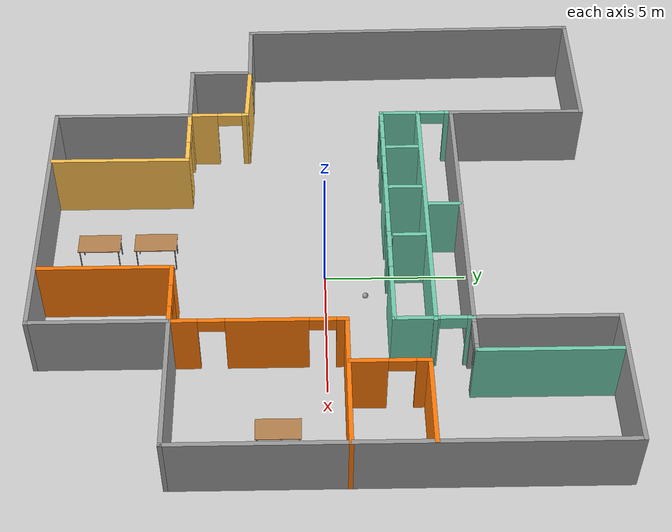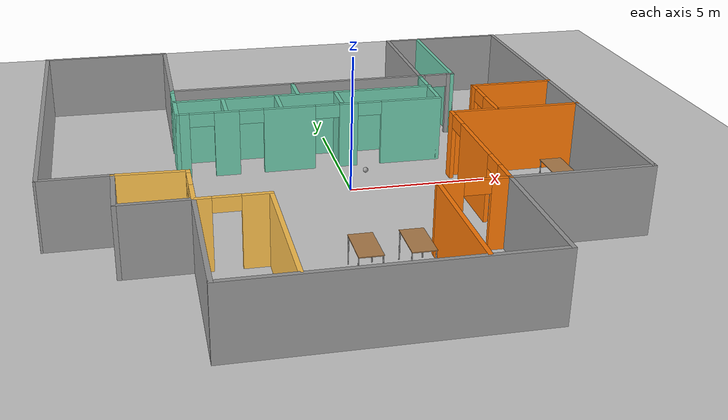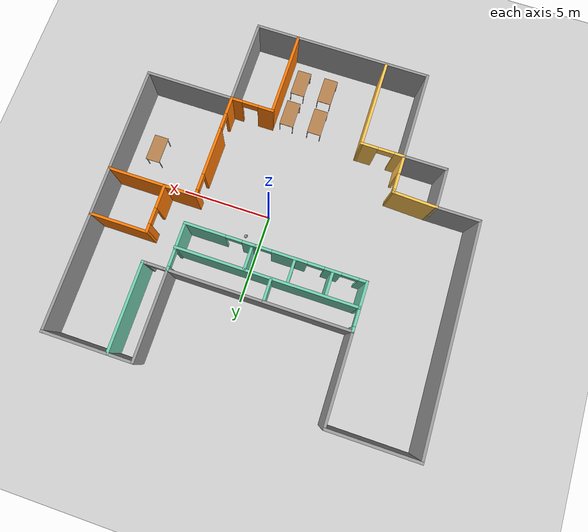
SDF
<sdf version="1.6">
 <world name="default">
  <model name="ground_plane">
   <static>1</static>
   <link name="link">
    <collision name="collision">
     <geometry><plane><normal>0 0 1</normal><size>100 100</size></plane></geometry>
     <surface>
      <contact><collide_bitmask>65535</collide_bitmask></contact>
      <friction><ode><mu>100</mu><mu2>50</mu2></ode></friction>
     </surface>
    </collision>
    <visual name="visual">
     <cast_shadows>0</cast_shadows>
     <geometry><plane><normal>0 0 1</normal><size>100 100</size></plane></geometry>
     <material>
      <script><uri>file://media/materials/scripts/gazebo.material</uri><name>Gazebo/Grey</name></script>
     </material>
    </visual>
   </link>
  </model>
  <model name="building">
   <pose>-1.05602 -0.10222 0 0 -0 0</pose>
   <link name="Wall_0">
    <collision name="Wall_0_Collision">
     <geometry><box><size>5 0.15 2.5</size></box></geometry>
     <pose>0 0 1.25 0 -0 0</pose>
    </collision>
    <visual name="Wall_0_Visual">
     <pose>0 0 1.25 0 -0 0</pose>
     <geometry><box><size>5 0.15 2.5</size></box></geometry>
     <material>
      <script><uri>file://media/materials/scripts/gazebo.material</uri><name>Gazebo/Grey</name></script>
      <ambient>1 1 1 1</ambient>
     </material>
     <meta><layer>0</layer></meta>
    </visual>
    <pose>-7.34955 9.75605 0 0 -0 0</pose>
   </link>
   <link name="Wall_1">
    <collision name="Wall_1_Collision">
     <geometry><box><size>5 0.15 2.5</size></box></geometry>
     <pose>0 0 1.25 0 -0 0</pose>
    </collision>
    <visual name="Wall_1_Visual">
     <pose>0 0 1.25 0 -0 0</pose>
     <geometry><box><size>5 0.15 2.5</size></box></geometry>
     <material>
      <script><uri>file://media/materials/scripts/gazebo.material</uri><name>Gazebo/Grey</name></script>
      <ambient>1 1 1 1</ambient>
     </material>
     <meta><layer>0</layer></meta>
    </visual>
    <pose>-4.92455 7.33105 0 0 0 -1.5708</pose>
   </link>
   <link name="Wall_10">
    <collision name="Wall_10_Collision">
     <geometry><box><size>2.5 0.15 2.5</size></box></geometry>
     <pose>0 0 1.25 0 -0 0</pose>
    </collision>
    <visual name="Wall_10_Visual">
     <pose>0 0 1.25 0 -0 0</pose>
     <geometry><box><size>2.5 0.15 2.5</size></box></geometry>
     <material>
      <script><uri>file://media/materials/scripts/gazebo.material</uri><name>Gazebo/Grey</name></script>
      <ambient>1 1 1 1</ambient>
     </material>
     <meta><layer>0</layer></meta>
    </visual>
    <pose>-6.09955 -4.81295 0 0 -0 3.14159</pose>
   </link>
   <link name="Wall_11">
    <collision name="Wall_11_Collision">
     <geometry><box><size>2.344 0.15 2.5</size></box></geometry>
     <pose>0 0 1.25 0 -0 0</pose>
    </collision>
    <visual name="Wall_11_Visual">
     <pose>0 0 1.25 0 -0 0</pose>
     <geometry><box><size>2.344 0.15 2.5</size></box></geometry>
     <material>
      <script><uri>file://media/materials/scripts/gazebo.material</uri><name>Gazebo/Grey</name></script>
      <ambient>1 1 1 1</ambient>
     </material>
     <meta><layer>0</layer></meta>
    </visual>
    <pose>-7.27455 -3.71595 0 0 -0 1.5708</pose>
   </link>
   <link name="Wall_12">
    <collision name="Wall_12_Collision">
     <geometry><box><size>2.5 0.15 2.5</size></box></geometry>
     <pose>0 0 1.25 0 -0 0</pose>
    </collision>
    <visual name="Wall_12_Visual">
     <pose>0 0 1.25 0 -0 0</pose>
     <geometry><box><size>2.5 0.15 2.5</size></box></geometry>
     <material>
      <script><uri>file://media/materials/scripts/gazebo.material</uri><name>Gazebo/Grey</name></script>
      <ambient>1 1 1 1</ambient>
     </material>
     <meta><layer>0</layer></meta>
    </visual>
    <pose>-8.44955 -2.61895 0 0 -0 3.14159</pose>
   </link>
   <link name="Wall_13">
    <collision name="Wall_13_Collision">
     <geometry><box><size>12.5259 0.15 2.5</size></box></geometry>
     <pose>0 0 1.25 0 -0 0</pose>
    </collision>
    <visual name="Wall_13_Visual">
     <pose>0 0 1.25 0 -0 0</pose>
     <geometry><box><size>12.5259 0.15 2.5</size></box></geometry>
     <material>
      <script><uri>file://media/materials/scripts/gazebo.material</uri><name>Gazebo/Grey</name></script>
      <ambient>1 1 1 1</ambient>
     </material>
     <meta><layer>0</layer></meta>
    </visual>
    <pose>-9.69955 3.56855 0 0 -0 1.58292</pose>
   </link>
   <link name="Wall_15">
    <pose>-3.74955 -4.81295 0 0 -0 0</pose>
    <visual name="Wall_15_Visual_0">
     <pose>-0.942883 0 1.25 0 -0 0</pose>
     <geometry><box><size>0.614234 0.15 2.5</size></box></geometry>
     <material>
      <script><uri>file://media/materials/scripts/gazebo.material</uri><name>Gazebo/Grey</name></script>
      <ambient>1 0.764706 0.305882 1</ambient>
     </material>
     <meta><layer>0</layer></meta>
    </visual>
    <collision name="Wall_15_Collision_0">
     <geometry><box><size>0.614234 0.15 2.5</size></box></geometry>
     <pose>-0.942883 0 1.25 0 -0 0</pose>
    </collision>
    <visual name="Wall_15_Visual_1">
     <pose>0.757117 0 1.25 0 -0 0</pose>
     <geometry><box><size>0.985766 0.15 2.5</size></box></geometry>
     <material>
      <script><uri>file://media/materials/scripts/gazebo.material</uri><name>Gazebo/Grey</name></script>
      <ambient>1 0.764706 0.305882 1</ambient>
     </material>
     <meta><layer>0</layer></meta>
    </visual>
    <collision name="Wall_15_Collision_1">
     <geometry><box><size>0.985766 0.15 2.5</size></box></geometry>
     <pose>0.757117 0 1.25 0 -0 0</pose>
    </collision>
    <visual name="Wall_15_Visual_2">
     <pose>-0.185766 0 2.25 0 -0 0</pose>
     <geometry><box><size>0.9 0.15 0.5</size></box></geometry>
     <material>
      <script><uri>file://media/materials/scripts/gazebo.material</uri><name>Gazebo/Grey</name></script>
      <ambient>1 0.764706 0.305882 1</ambient>
     </material>
     <meta><layer>0</layer></meta>
    </visual>
    <collision name="Wall_15_Collision_2">
     <geometry><box><size>0.9 0.15 0.5</size></box></geometry>
     <pose>-0.185766 0 2.25 0 -0 0</pose>
    </collision>
   </link>
   <link name="Wall_16">
    <collision name="Wall_16_Collision">
     <geometry><box><size>5 0.15 2.5</size></box></geometry>
     <pose>0 0 1.25 0 -0 0</pose>
    </collision>
    <visual name="Wall_16_Visual">
     <pose>0 0 1.25 0 -0 0</pose>
     <geometry><box><size>5 0.15 2.5</size></box></geometry>
     <material>
      <script><uri>file://media/materials/scripts/gazebo.material</uri><name>Gazebo/Grey</name></script>
      <ambient>1 0.764706 0.305882 1</ambient>
     </material>
     <meta><layer>0</layer></meta>
    </visual>
    <pose>-2.57455 -7.23795 0 0 0 -1.5708</pose>
   </link>
   <link name="Wall_18">
    <pose>3.75045 -5.09395 0 0 -0 3.14159</pose>
    <visual name="Wall_18_Visual_0">
     <pose>-0.900353 0 1.25 0 -0 0</pose>
     <geometry><box><size>0.699294 0.15 2.5</size></box></geometry>
     <material>
      <script><uri>file://media/materials/scripts/gazebo.material</uri><name>Gazebo/Grey</name></script>
      <ambient>0.996078 0.47451 0.0196078 1</ambient>
     </material>
     <meta><layer>0</layer></meta>
    </visual>
    <collision name="Wall_18_Collision_0">
     <geometry><box><size>0.699294 0.15 2.5</size></box></geometry>
     <pose>-0.900353 0 1.25 0 -0 0</pose>
    </collision>
    <visual name="Wall_18_Visual_1">
     <pose>0.799647 0 1.25 0 -0 0</pose>
     <geometry><box><size>0.900706 0.15 2.5</size></box></geometry>
     <material>
      <script><uri>file://media/materials/scripts/gazebo.material</uri><name>Gazebo/Grey</name></script>
      <ambient>0.996078 0.47451 0.0196078 1</ambient>
     </material>
     <meta><layer>0</layer></meta>
    </visual>
    <collision name="Wall_18_Collision_1">
     <geometry><box><size>0.900706 0.15 2.5</size></box></geometry>
     <pose>0.799647 0 1.25 0 -0 0</pose>
    </collision>
    <visual name="Wall_18_Visual_2">
     <pose>-0.100706 0 2.25 0 -0 0</pose>
     <geometry><box><size>0.9 0.15 0.5</size></box></geometry>
     <material>
      <script><uri>file://media/materials/scripts/gazebo.material</uri><name>Gazebo/Grey</name></script>
      <ambient>0.996078 0.47451 0.0196078 1</ambient>
     </material>
     <meta><layer>0</layer></meta>
    </visual>
    <collision name="Wall_18_Collision_2">
     <geometry><box><size>0.9 0.15 0.5</size></box></geometry>
     <pose>-0.100706 0 2.25 0 -0 0</pose>
    </collision>
   </link>
   <link name="Wall_2">
    <collision name="Wall_2_Collision">
     <geometry><box><size>10 0.15 2.5</size></box></geometry>
     <pose>0 0 1.25 0 -0 0</pose>
    </collision>
    <visual name="Wall_2_Visual">
     <pose>0 0 1.25 0 -0 0</pose>
     <geometry><box><size>10 0.15 2.5</size></box></geometry>
     <material>
      <script><uri>file://media/materials/scripts/gazebo.material</uri><name>Gazebo/Grey</name></script>
      <ambient>1 1 1 1</ambient>
     </material>
     <meta><layer>0</layer></meta>
    </visual>
    <pose>0.000451 4.90605 0 0 -0 0</pose>
   </link>
   <link name="Wall_21">
    <collision name="Wall_21_Collision">
     <geometry><box><size>4.813 0.15 2.5</size></box></geometry>
     <pose>0 0 1.25 0 -0 0</pose>
    </collision>
    <visual name="Wall_21_Visual">
     <pose>0 0 1.25 0 -0 0</pose>
     <geometry><box><size>4.813 0.15 2.5</size></box></geometry>
     <material>
      <script><uri>file://media/materials/scripts/gazebo.material</uri><name>Gazebo/Grey</name></script>
      <ambient>0.996078 0.47451 0.0196078 1</ambient>
     </material>
     <meta><layer>0</layer></meta>
    </visual>
    <pose>2.57545 -7.42545 0 0 0 -1.5708</pose>
   </link>
   <link name="Wall_23">
    <pose>-4.92455 -3.76295 0 0 -0 1.5708</pose>
    <visual name="Wall_23_Visual_0">
     <pose>-0.57792 0 1.25 0 -0 0</pose>
     <geometry><box><size>1.09416 0.15 2.5</size></box></geometry>
     <material>
      <script><uri>file://media/materials/scripts/gazebo.material</uri><name>Gazebo/Grey</name></script>
      <ambient>1 0.764706 0.305882 1</ambient>
     </material>
     <meta><layer>0</layer></meta>
    </visual>
    <collision name="Wall_23_Collision_0">
     <geometry><box><size>1.09416 0.15 2.5</size></box></geometry>
     <pose>-0.57792 0 1.25 0 -0 0</pose>
    </collision>
    <visual name="Wall_23_Visual_1">
     <pose>0.99708 0 1.25 0 -0 0</pose>
     <geometry><box><size>0.255839 0.15 2.5</size></box></geometry>
     <material>
      <script><uri>file://media/materials/scripts/gazebo.material</uri><name>Gazebo/Grey</name></script>
      <ambient>1 0.764706 0.305882 1</ambient>
     </material>
     <meta><layer>0</layer></meta>
    </visual>
    <collision name="Wall_23_Collision_1">
     <geometry><box><size>0.255839 0.15 2.5</size></box></geometry>
     <pose>0.99708 0 1.25 0 -0 0</pose>
    </collision>
    <visual name="Wall_23_Visual_2">
     <pose>0.419161 0 2.25 0 -0 0</pose>
     <geometry><box><size>0.9 0.15 0.5</size></box></geometry>
     <material>
      <script><uri>file://media/materials/scripts/gazebo.material</uri><name>Gazebo/Grey</name></script>
      <ambient>1 0.764706 0.305882 1</ambient>
     </material>
     <meta><layer>0</layer></meta>
    </visual>
    <collision name="Wall_23_Collision_2">
     <geometry><box><size>0.9 0.15 0.5</size></box></geometry>
     <pose>0.419161 0 2.25 0 -0 0</pose>
    </collision>
   </link>
   <link name="Wall_24">
    <collision name="Wall_24_Collision">
     <geometry><box><size>2.50188 0.15 2.5</size></box></geometry>
     <pose>0 0 1.25 0 -0 0</pose>
    </collision>
    <visual name="Wall_24_Visual">
     <pose>0 0 1.25 0 -0 0</pose>
     <geometry><box><size>2.50188 0.15 2.5</size></box></geometry>
     <material>
      <script><uri>file://media/materials/scripts/gazebo.material</uri><name>Gazebo/Grey</name></script>
      <ambient>1 0.764706 0.305882 1</ambient>
     </material>
     <meta><layer>0</layer></meta>
    </visual>
    <pose>-6.09955 -2.66595 0 0 -0 3.10161</pose>
   </link>
   <link name="Wall_26">
    <pose>4.92545 -2.16895 0 0 -0 1.5708</pose>
    <visual name="Wall_26_Visual_0">
     <pose>-2.49069 0 1.25 0 -0 0</pose>
     <geometry><box><size>1.01863 0.15 2.5</size></box></geometry>
     <material>
      <script><uri>file://media/materials/scripts/gazebo.material</uri><name>Gazebo/Grey</name></script>
      <ambient>0.996078 0.47451 0.0196078 1</ambient>
     </material>
     <meta><layer>0</layer></meta>
    </visual>
    <collision name="Wall_26_Collision_0">
     <geometry><box><size>1.01863 0.15 2.5</size></box></geometry>
     <pose>-2.49069 0 1.25 0 -0 0</pose>
    </collision>
    <visual name="Wall_26_Visual_1">
     <pose>0.299469 0 1.25 0 -0 0</pose>
     <geometry><box><size>2.76168 0.15 2.5</size></box></geometry>
     <material>
      <script><uri>file://media/materials/scripts/gazebo.material</uri><name>Gazebo/Grey</name></script>
      <ambient>0.996078 0.47451 0.0196078 1</ambient>
     </material>
     <meta><layer>0</layer></meta>
    </visual>
    <collision name="Wall_26_Collision_1">
     <geometry><box><size>2.76168 0.15 2.5</size></box></geometry>
     <pose>0.299469 0 1.25 0 -0 0</pose>
    </collision>
    <visual name="Wall_26_Visual_2">
     <pose>2.79015 0 1.25 0 -0 0</pose>
     <geometry><box><size>0.419692 0.15 2.5</size></box></geometry>
     <material>
      <script><uri>file://media/materials/scripts/gazebo.material</uri><name>Gazebo/Grey</name></script>
      <ambient>0.996078 0.47451 0.0196078 1</ambient>
     </material>
     <meta><layer>0</layer></meta>
    </visual>
    <collision name="Wall_26_Collision_2">
     <geometry><box><size>0.419692 0.15 2.5</size></box></geometry>
     <pose>2.79015 0 1.25 0 -0 0</pose>
    </collision>
    <visual name="Wall_26_Visual_3">
     <pose>-1.53137 0 2.25 0 -0 0</pose>
     <geometry><box><size>0.9 0.15 0.5</size></box></geometry>
     <material>
      <script><uri>file://media/materials/scripts/gazebo.material</uri><name>Gazebo/Grey</name></script>
      <ambient>0.996078 0.47451 0.0196078 1</ambient>
     </material>
     <meta><layer>0</layer></meta>
    </visual>
    <collision name="Wall_26_Collision_3">
     <geometry><box><size>0.9 0.15 0.5</size></box></geometry>
     <pose>-1.53137 0 2.25 0 -0 0</pose>
    </collision>
    <visual name="Wall_26_Visual_4">
     <pose>2.13031 0 2.25 0 -0 0</pose>
     <geometry><box><size>0.9 0.15 0.5</size></box></geometry>
     <material>
      <script><uri>file://media/materials/scripts/gazebo.material</uri><name>Gazebo/Grey</name></script>
      <ambient>0.996078 0.47451 0.0196078 1</ambient>
     </material>
     <meta><layer>0</layer></meta>
    </visual>
    <collision name="Wall_26_Collision_4">
     <geometry><box><size>0.9 0.15 0.5</size></box></geometry>
     <pose>2.13031 0 2.25 0 -0 0</pose>
    </collision>
   </link>
   <link name="Wall_27">
    <collision name="Wall_27_Collision">
     <geometry><box><size>5 0.15 2.5</size></box></geometry>
     <pose>0 0 1.25 0 -0 0</pose>
    </collision>
    <visual name="Wall_27_Visual">
     <pose>0 0 1.25 0 -0 0</pose>
     <geometry><box><size>5 0.15 2.5</size></box></geometry>
     <material>
      <script><uri>file://media/materials/scripts/gazebo.material</uri><name>Gazebo/Grey</name></script>
      <ambient>0.996078 0.47451 0.0196078 1</ambient>
     </material>
     <meta><layer>0</layer></meta>
    </visual>
    <pose>7.35045 0.756049 0 0 -0 0</pose>
   </link>
   <link name="Wall_29">
    <pose>6.65238 2.07506 0 0 -0 1.5708</pose>
    <visual name="Wall_29_Visual_0">
     <pose>-0.708109 0 1.25 0 -0 0</pose>
     <geometry><box><size>1.33378 0.15 2.5</size></box></geometry>
     <material>
      <script><uri>file://media/materials/scripts/gazebo.material</uri><name>Gazebo/Grey</name></script>
      <ambient>0.996078 0.47451 0.0196078 1</ambient>
     </material>
     <meta><layer>0</layer></meta>
    </visual>
    <collision name="Wall_29_Collision_0">
     <geometry><box><size>1.33378 0.15 2.5</size></box></geometry>
     <pose>-0.708109 0 1.25 0 -0 0</pose>
    </collision>
    <visual name="Wall_29_Visual_1">
     <pose>1.11689 0 1.25 0 -0 0</pose>
     <geometry><box><size>0.516217 0.15 2.5</size></box></geometry>
     <material>
      <script><uri>file://media/materials/scripts/gazebo.material</uri><name>Gazebo/Grey</name></script>
      <ambient>0.996078 0.47451 0.0196078 1</ambient>
     </material>
     <meta><layer>0</layer></meta>
    </visual>
    <collision name="Wall_29_Collision_1">
     <geometry><box><size>0.516217 0.15 2.5</size></box></geometry>
     <pose>1.11689 0 1.25 0 -0 0</pose>
    </collision>
    <visual name="Wall_29_Visual_2">
     <pose>0.408783 0 2.25 0 -0 0</pose>
     <geometry><box><size>0.9 0.15 0.5</size></box></geometry>
     <material>
      <script><uri>file://media/materials/scripts/gazebo.material</uri><name>Gazebo/Grey</name></script>
      <ambient>0.996078 0.47451 0.0196078 1</ambient>
     </material>
     <meta><layer>0</layer></meta>
    </visual>
    <collision name="Wall_29_Collision_2">
     <geometry><box><size>0.9 0.15 0.5</size></box></geometry>
     <pose>0.408783 0 2.25 0 -0 0</pose>
    </collision>
   </link>
   <link name="Wall_3">
    <collision name="Wall_3_Collision">
     <geometry><box><size>5 0.15 2.5</size></box></geometry>
     <pose>0 0 1.25 0 -0 0</pose>
    </collision>
    <visual name="Wall_3_Visual">
     <pose>0 0 1.25 0 -0 0</pose>
     <geometry><box><size>5 0.15 2.5</size></box></geometry>
     <material>
      <script><uri>file://media/materials/scripts/gazebo.material</uri><name>Gazebo/Grey</name></script>
      <ambient>1 1 1 1</ambient>
     </material>
     <meta><layer>0</layer></meta>
    </visual>
    <pose>4.92545 7.33105 0 0 -0 1.5708</pose>
   </link>
   <link name="Wall_30">
    <collision name="Wall_30_Collision">
     <geometry><box><size>3.25 0.15 2.5</size></box></geometry>
     <pose>0 0 1.25 0 -0 0</pose>
    </collision>
    <visual name="Wall_30_Visual">
     <pose>0 0 1.25 0 -0 0</pose>
     <geometry><box><size>3.25 0.15 2.5</size></box></geometry>
     <material>
      <script><uri>file://media/materials/scripts/gazebo.material</uri><name>Gazebo/Grey</name></script>
      <ambient>0.996078 0.47451 0.0196078 1</ambient>
     </material>
     <meta><layer>0</layer></meta>
    </visual>
    <pose>8.20237 3.37506 0 0 -0 0</pose>
   </link>
   <link name="Wall_32">
    <pose>5.60045 4.90605 0 0 -0 0</pose>
    <visual name="Wall_32_Visual_0">
     <pose>-0.605415 0 1.25 0 -0 0</pose>
     <geometry><box><size>0.289171 0.15 2.5</size></box></geometry>
     <material>
      <script><uri>file://media/materials/scripts/gazebo.material</uri><name>Gazebo/Grey</name></script>
      <ambient>1 1 1 1</ambient>
     </material>
     <meta><layer>0</layer></meta>
    </visual>
    <collision name="Wall_32_Collision_0">
     <geometry><box><size>0.289171 0.15 2.5</size></box></geometry>
     <pose>-0.605415 0 1.25 0 -0 0</pose>
    </collision>
    <visual name="Wall_32_Visual_1">
     <pose>0.594585 0 1.25 0 -0 0</pose>
     <geometry><box><size>0.310829 0.15 2.5</size></box></geometry>
     <material>
      <script><uri>file://media/materials/scripts/gazebo.material</uri><name>Gazebo/Grey</name></script>
      <ambient>1 1 1 1</ambient>
     </material>
     <meta><layer>0</layer></meta>
    </visual>
    <collision name="Wall_32_Collision_1">
     <geometry><box><size>0.310829 0.15 2.5</size></box></geometry>
     <pose>0.594585 0 1.25 0 -0 0</pose>
    </collision>
    <visual name="Wall_32_Visual_2">
     <pose>-0.010829 0 2.25 0 -0 0</pose>
     <geometry><box><size>0.9 0.15 0.5</size></box></geometry>
     <material>
      <script><uri>file://media/materials/scripts/gazebo.material</uri><name>Gazebo/Grey</name></script>
      <ambient>1 1 1 1</ambient>
     </material>
     <meta><layer>0</layer></meta>
    </visual>
    <collision name="Wall_32_Collision_2">
     <geometry><box><size>0.9 0.15 0.5</size></box></geometry>
     <pose>-0.010829 0 2.25 0 -0 0</pose>
    </collision>
   </link>
   <link name="Wall_33">
    <collision name="Wall_33_Collision">
     <geometry><box><size>5 0.15 2.5</size></box></geometry>
     <pose>0 0 1.25 0 -0 0</pose>
    </collision>
    <visual name="Wall_33_Visual">
     <pose>0 0 1.25 0 -0 0</pose>
     <geometry><box><size>5 0.15 2.5</size></box></geometry>
     <material>
      <script><uri>file://media/materials/scripts/gazebo.material</uri><name>Gazebo/Grey</name></script>
      <ambient>0.435294 0.796078 0.67451 1</ambient>
     </material>
     <meta><layer>0</layer></meta>
    </visual>
    <pose>6.27545 7.33105 0 0 -0 1.5708</pose>
   </link>
   <link name="Wall_35">
    <pose>-4.92455 3.60605 0 0 0 -1.5708</pose>
    <visual name="Wall_35_Visual_0">
     <pose>-1.20915 0 1.25 0 -0 0</pose>
     <geometry><box><size>0.3317 0.15 2.5</size></box></geometry>
     <material>
      <script><uri>file://media/materials/scripts/gazebo.material</uri><name>Gazebo/Grey</name></script>
      <ambient>0.435294 0.796078 0.67451 1</ambient>
     </material>
     <meta><layer>0</layer></meta>
    </visual>
    <collision name="Wall_35_Collision_0">
     <geometry><box><size>0.3317 0.15 2.5</size></box></geometry>
     <pose>-1.20915 0 1.25 0 -0 0</pose>
    </collision>
    <visual name="Wall_35_Visual_1">
     <pose>0.61585 0 1.25 0 -0 0</pose>
     <geometry><box><size>1.5183 0.15 2.5</size></box></geometry>
     <material>
      <script><uri>file://media/materials/scripts/gazebo.material</uri><name>Gazebo/Grey</name></script>
      <ambient>0.435294 0.796078 0.67451 1</ambient>
     </material>
     <meta><layer>0</layer></meta>
    </visual>
    <collision name="Wall_35_Collision_1">
     <geometry><box><size>1.5183 0.15 2.5</size></box></geometry>
     <pose>0.61585 0 1.25 0 -0 0</pose>
    </collision>
    <visual name="Wall_35_Visual_2">
     <pose>-0.5933 0 2.25 0 -0 0</pose>
     <geometry><box><size>0.9 0.15 0.5</size></box></geometry>
     <material>
      <script><uri>file://media/materials/scripts/gazebo.material</uri><name>Gazebo/Grey</name></script>
      <ambient>0.435294 0.796078 0.67451 1</ambient>
     </material>
     <meta><layer>0</layer></meta>
    </visual>
    <collision name="Wall_35_Collision_2">
     <geometry><box><size>0.9 0.15 0.5</size></box></geometry>
     <pose>-0.5933 0 2.25 0 -0 0</pose>
    </collision>
   </link>
   <link name="Wall_36">
    <pose>0.000451 2.30605 0 0 -0 0</pose>
    <visual name="Wall_36_Visual_0">
     <pose>-4.74054 0 1.25 0 -0 0</pose>
     <geometry><box><size>0.518918 0.15 2.5</size></box></geometry>
     <material>
      <script><uri>file://media/materials/scripts/gazebo.material</uri><name>Gazebo/Grey</name></script>
      <ambient>0.435294 0.796078 0.67451 1</ambient>
     </material>
     <meta><layer>0</layer></meta>
    </visual>
    <collision name="Wall_36_Collision_0">
     <geometry><box><size>0.518918 0.15 2.5</size></box></geometry>
     <pose>-4.74054 0 1.25 0 -0 0</pose>
    </collision>
    <visual name="Wall_36_Visual_1">
     <pose>-3.12154 0 1.25 0 -0 0</pose>
     <geometry><box><size>0.919085 0.15 2.5</size></box></geometry>
     <material>
      <script><uri>file://media/materials/scripts/gazebo.material</uri><name>Gazebo/Grey</name></script>
      <ambient>0.435294 0.796078 0.67451 1</ambient>
     </material>
     <meta><layer>0</layer></meta>
    </visual>
    <collision name="Wall_36_Collision_1">
     <geometry><box><size>0.919085 0.15 2.5</size></box></geometry>
     <pose>-3.12154 0 1.25 0 -0 0</pose>
    </collision>
    <visual name="Wall_36_Visual_2">
     <pose>-0.79418 0 1.25 0 -0 0</pose>
     <geometry><box><size>1.93563 0.15 2.5</size></box></geometry>
     <material>
      <script><uri>file://media/materials/scripts/gazebo.material</uri><name>Gazebo/Grey</name></script>
      <ambient>0.435294 0.796078 0.67451 1</ambient>
     </material>
     <meta><layer>0</layer></meta>
    </visual>
    <collision name="Wall_36_Collision_2">
     <geometry><box><size>1.93563 0.15 2.5</size></box></geometry>
     <pose>-0.79418 0 1.25 0 -0 0</pose>
    </collision>
    <visual name="Wall_36_Visual_3">
     <pose>1.42617 0 1.25 0 -0 0</pose>
     <geometry><box><size>0.705075 0.15 2.5</size></box></geometry>
     <material>
      <script><uri>file://media/materials/scripts/gazebo.material</uri><name>Gazebo/Grey</name></script>
      <ambient>0.435294 0.796078 0.67451 1</ambient>
     </material>
     <meta><layer>0</layer></meta>
    </visual>
    <collision name="Wall_36_Collision_3">
     <geometry><box><size>0.705075 0.15 2.5</size></box></geometry>
     <pose>1.42617 0 1.25 0 -0 0</pose>
    </collision>
    <visual name="Wall_36_Visual_4">
     <pose>3.83935 0 1.25 0 -0 0</pose>
     <geometry><box><size>2.32129 0.15 2.5</size></box></geometry>
     <material>
      <script><uri>file://media/materials/scripts/gazebo.material</uri><name>Gazebo/Grey</name></script>
      <ambient>0.435294 0.796078 0.67451 1</ambient>
     </material>
     <meta><layer>0</layer></meta>
    </visual>
    <collision name="Wall_36_Collision_4">
     <geometry><box><size>2.32129 0.15 2.5</size></box></geometry>
     <pose>3.83935 0 1.25 0 -0 0</pose>
    </collision>
    <visual name="Wall_36_Visual_5">
     <pose>-4.03108 0 2.25 0 -0 0</pose>
     <geometry><box><size>0.9 0.15 0.5</size></box></geometry>
     <material>
      <script><uri>file://media/materials/scripts/gazebo.material</uri><name>Gazebo/Grey</name></script>
      <ambient>0.435294 0.796078 0.67451 1</ambient>
     </material>
     <meta><layer>0</layer></meta>
    </visual>
    <collision name="Wall_36_Collision_5">
     <geometry><box><size>0.9 0.15 0.5</size></box></geometry>
     <pose>-4.03108 0 2.25 0 -0 0</pose>
    </collision>
    <visual name="Wall_36_Visual_6">
     <pose>-2.212 0 2.25 0 -0 0</pose>
     <geometry><box><size>0.9 0.15 0.5</size></box></geometry>
     <material>
      <script><uri>file://media/materials/scripts/gazebo.material</uri><name>Gazebo/Grey</name></script>
      <ambient>0.435294 0.796078 0.67451 1</ambient>
     </material>
     <meta><layer>0</layer></meta>
    </visual>
    <collision name="Wall_36_Collision_6">
     <geometry><box><size>0.9 0.15 0.5</size></box></geometry>
     <pose>-2.212 0 2.25 0 -0 0</pose>
    </collision>
    <visual name="Wall_36_Visual_7">
     <pose>0.623636 0 2.25 0 -0 0</pose>
     <geometry><box><size>0.9 0.15 0.5</size></box></geometry>
     <material>
      <script><uri>file://media/materials/scripts/gazebo.material</uri><name>Gazebo/Grey</name></script>
      <ambient>0.435294 0.796078 0.67451 1</ambient>
     </material>
     <meta><layer>0</layer></meta>
    </visual>
    <collision name="Wall_36_Collision_7">
     <geometry><box><size>0.9 0.15 0.5</size></box></geometry>
     <pose>0.623636 0 2.25 0 -0 0</pose>
    </collision>
    <visual name="Wall_36_Visual_8">
     <pose>2.22871 0 2.25 0 -0 0</pose>
     <geometry><box><size>0.9 0.15 0.5</size></box></geometry>
     <material>
      <script><uri>file://media/materials/scripts/gazebo.material</uri><name>Gazebo/Grey</name></script>
      <ambient>0.435294 0.796078 0.67451 1</ambient>
     </material>
     <meta><layer>0</layer></meta>
    </visual>
    <collision name="Wall_36_Collision_8">
     <geometry><box><size>0.9 0.15 0.5</size></box></geometry>
     <pose>2.22871 0 2.25 0 -0 0</pose>
    </collision>
   </link>
   <link name="Wall_37">
    <pose>4.92545 3.60605 0 0 -0 1.5708</pose>
    <visual name="Wall_37_Visual_0">
     <pose>-0.589099 0 1.25 0 -0 0</pose>
     <geometry><box><size>1.5718 0.15 2.5</size></box></geometry>
     <material>
      <script><uri>file://media/materials/scripts/gazebo.material</uri><name>Gazebo/Grey</name></script>
      <ambient>0.435294 0.796078 0.67451 1</ambient>
     </material>
     <meta><layer>0</layer></meta>
    </visual>
    <collision name="Wall_37_Collision_0">
     <geometry><box><size>1.5718 0.15 2.5</size></box></geometry>
     <pose>-0.589099 0 1.25 0 -0 0</pose>
    </collision>
    <visual name="Wall_37_Visual_1">
     <pose>1.2359 0 1.25 0 -0 0</pose>
     <geometry><box><size>0.278198 0.15 2.5</size></box></geometry>
     <material>
      <script><uri>file://media/materials/scripts/gazebo.material</uri><name>Gazebo/Grey</name></script>
      <ambient>0.435294 0.796078 0.67451 1</ambient>
     </material>
     <meta><layer>0</layer></meta>
    </visual>
    <collision name="Wall_37_Collision_1">
     <geometry><box><size>0.278198 0.15 2.5</size></box></geometry>
     <pose>1.2359 0 1.25 0 -0 0</pose>
    </collision>
    <visual name="Wall_37_Visual_2">
     <pose>0.646802 0 2.25 0 -0 0</pose>
     <geometry><box><size>0.9 0.15 0.5</size></box></geometry>
     <material>
      <script><uri>file://media/materials/scripts/gazebo.material</uri><name>Gazebo/Grey</name></script>
      <ambient>0.435294 0.796078 0.67451 1</ambient>
     </material>
     <meta><layer>0</layer></meta>
    </visual>
    <collision name="Wall_37_Collision_2">
     <geometry><box><size>0.9 0.15 0.5</size></box></geometry>
     <pose>0.646802 0 2.25 0 -0 0</pose>
    </collision>
   </link>
   <link name="Wall_39">
    <collision name="Wall_39_Collision">
     <geometry><box><size>10 0.15 2.5</size></box></geometry>
     <pose>0 0 1.25 0 -0 0</pose>
    </collision>
    <visual name="Wall_39_Visual">
     <pose>0 0 1.25 0 -0 0</pose>
     <geometry><box><size>10 0.15 2.5</size></box></geometry>
     <material>
      <script><uri>file://media/materials/scripts/gazebo.material</uri><name>Gazebo/Grey</name></script>
      <ambient>0.435294 0.796078 0.67451 1</ambient>
     </material>
     <meta><layer>0</layer></meta>
    </visual>
    <pose>0.03833 3.66432 0 0 -0 0</pose>
   </link>
   <link name="Wall_4">
    <collision name="Wall_4_Collision">
     <geometry><box><size>5 0.15 2.5</size></box></geometry>
     <pose>0 0 1.25 0 -0 0</pose>
    </collision>
    <visual name="Wall_4_Visual">
     <pose>0 0 1.25 0 -0 0</pose>
     <geometry><box><size>5 0.15 2.5</size></box></geometry>
     <material>
      <script><uri>file://media/materials/scripts/gazebo.material</uri><name>Gazebo/Grey</name></script>
      <ambient>1 1 1 1</ambient>
     </material>
     <meta><layer>0</layer></meta>
    </visual>
    <pose>7.35045 9.75605 0 0 -0 0</pose>
   </link>
   <link name="Wall_41">
    <collision name="Wall_41_Collision">
     <geometry><box><size>1.25 0.15 2.5</size></box></geometry>
     <pose>0 0 1.25 0 -0 0</pose>
    </collision>
    <visual name="Wall_41_Visual">
     <pose>0 0 1.25 0 -0 0</pose>
     <geometry><box><size>1.25 0.15 2.5</size></box></geometry>
     <material>
      <script><uri>file://media/materials/scripts/gazebo.material</uri><name>Gazebo/Grey</name></script>
      <ambient>0.435294 0.796078 0.67451 1</ambient>
     </material>
     <meta><layer>0</layer></meta>
    </visual>
    <pose>-0.231953 4.29138 0 0 0 -1.5708</pose>
   </link>
   <link name="Wall_43">
    <collision name="Wall_43_Collision">
     <geometry><box><size>1.25 0.15 2.5</size></box></geometry>
     <pose>0 0 1.25 0 -0 0</pose>
    </collision>
    <visual name="Wall_43_Visual">
     <pose>0 0 1.25 0 -0 0</pose>
     <geometry><box><size>1.25 0.15 2.5</size></box></geometry>
     <material>
      <script><uri>file://media/materials/scripts/gazebo.material</uri><name>Gazebo/Grey</name></script>
      <ambient>0.435294 0.796078 0.67451 1</ambient>
     </material>
     <meta><layer>0</layer></meta>
    </visual>
    <pose>-3.12109 3.00732 0 0 0 -1.5708</pose>
   </link>
   <link name="Wall_45">
    <collision name="Wall_45_Collision">
     <geometry><box><size>1.25 0.15 2.5</size></box></geometry>
     <pose>0 0 1.25 0 -0 0</pose>
    </collision>
    <visual name="Wall_45_Visual">
     <pose>0 0 1.25 0 -0 0</pose>
     <geometry><box><size>1.25 0.15 2.5</size></box></geometry>
     <material>
      <script><uri>file://media/materials/scripts/gazebo.material</uri><name>Gazebo/Grey</name></script>
      <ambient>0.435294 0.796078 0.67451 1</ambient>
     </material>
     <meta><layer>0</layer></meta>
    </visual>
    <pose>-1.08799 3.00732 0 0 0 -1.5708</pose>
   </link>
   <link name="Wall_47">
    <collision name="Wall_47_Collision">
     <geometry><box><size>1.25 0.15 2.5</size></box></geometry>
     <pose>0 0 1.25 0 -0 0</pose>
    </collision>
    <visual name="Wall_47_Visual">
     <pose>0 0 1.25 0 -0 0</pose>
     <geometry><box><size>1.25 0.15 2.5</size></box></geometry>
     <material>
      <script><uri>file://media/materials/scripts/gazebo.material</uri><name>Gazebo/Grey</name></script>
      <ambient>0.435294 0.796078 0.67451 1</ambient>
     </material>
     <meta><layer>0</layer></meta>
    </visual>
    <pose>1.21261 3.06082 0 0 0 -1.5708</pose>
   </link>
   <link name="Wall_5">
    <collision name="Wall_5_Collision">
     <geometry><box><size>15 0.15 2.5</size></box></geometry>
     <pose>0 0 1.25 0 -0 0</pose>
    </collision>
    <visual name="Wall_5_Visual">
     <pose>0 0 1.25 0 -0 0</pose>
     <geometry><box><size>15 0.15 2.5</size></box></geometry>
     <material>
      <script><uri>file://media/materials/scripts/gazebo.material</uri><name>Gazebo/Grey</name></script>
      <ambient>1 1 1 1</ambient>
     </material>
     <meta><layer>0</layer></meta>
    </visual>
    <pose>9.77545 2.33105 0 0 0 -1.5708</pose>
   </link>
   <link name="Wall_6">
    <collision name="Wall_6_Collision">
     <geometry><box><size>5 0.15 2.5</size></box></geometry>
     <pose>0 0 1.25 0 -0 0</pose>
    </collision>
    <visual name="Wall_6_Visual">
     <pose>0 0 1.25 0 -0 0</pose>
     <geometry><box><size>5 0.15 2.5</size></box></geometry>
     <material>
      <script><uri>file://media/materials/scripts/gazebo.material</uri><name>Gazebo/Grey</name></script>
      <ambient>1 1 1 1</ambient>
     </material>
     <meta><layer>0</layer></meta>
    </visual>
    <pose>7.35045 -5.09395 0 0 -0 3.14159</pose>
   </link>
   <link name="Wall_7">
    <collision name="Wall_7_Collision">
     <geometry><box><size>4.81285 0.15 2.5</size></box></geometry>
     <pose>0 0 1.25 0 -0 0</pose>
    </collision>
    <visual name="Wall_7_Visual">
     <pose>0 0 1.25 0 -0 0</pose>
     <geometry><box><size>4.81285 0.15 2.5</size></box></geometry>
     <material>
      <script><uri>file://media/materials/scripts/gazebo.material</uri><name>Gazebo/Grey</name></script>
      <ambient>1 1 1 1</ambient>
     </material>
     <meta><layer>0</layer></meta>
    </visual>
    <pose>4.92545 -7.42545 0 0 0 -1.5708</pose>
   </link>
   <link name="Wall_8">
    <collision name="Wall_8_Collision">
     <geometry><box><size>10 0.15 2.5</size></box></geometry>
     <pose>0 0 1.25 0 -0 0</pose>
    </collision>
    <visual name="Wall_8_Visual">
     <pose>0 0 1.25 0 -0 0</pose>
     <geometry><box><size>10 0.15 2.5</size></box></geometry>
     <material>
      <script><uri>file://media/materials/scripts/gazebo.material</uri><name>Gazebo/Grey</name></script>
      <ambient>1 1 1 1</ambient>
     </material>
     <meta><layer>0</layer></meta>
    </visual>
    <pose>0.000451 -9.75695 0 0 -0 3.14159</pose>
   </link>
   <link name="Wall_9">
    <collision name="Wall_9_Collision">
     <geometry><box><size>5.09358 0.15 2.5</size></box></geometry>
     <pose>0 0 1.25 0 -0 0</pose>
    </collision>
    <visual name="Wall_9_Visual">
     <pose>0 0 1.25 0 -0 0</pose>
     <geometry><box><size>5.09358 0.15 2.5</size></box></geometry>
     <material>
      <script><uri>file://media/materials/scripts/gazebo.material</uri><name>Gazebo/Grey</name></script>
      <ambient>1 1 1 1</ambient>
     </material>
     <meta><layer>0</layer></meta>
    </visual>
    <pose>-4.92455 -7.28495 0 0 -0 1.5708</pose>
   </link>
   <static>1</static>
  </model>
  <model name="table_clone_2">
   <static>1</static>
   <link name="link">
    <collision name="surface">
     <pose>0 0 1 0 -0 0</pose>
     <geometry><box><size>1.5 0.8 0.03</size></box></geometry>
     <surface><friction><ode><mu>0.6</mu><mu2>0.6</mu2></ode></friction></surface>
    </collision>
    <visual name="visual1">
     <pose>0 0 1 0 -0 0</pose>
     <geometry><box><size>1.5 0.8 0.03</size></box></geometry>
     <material>
      <script><uri>file://media/materials/scripts/gazebo.material</uri><name>Gazebo/Wood</name></script>
     </material>
    </visual>
    <collision name="front_left_leg">
     <pose>0.68 0.38 0.5 0 -0 0</pose>
     <geometry><cylinder><radius>0.02</radius><length>1</length></cylinder></geometry>
    </collision>
    <visual name="front_left_leg">
     <pose>0.68 0.38 0.5 0 -0 0</pose>
     <geometry><cylinder><radius>0.02</radius><length>1</length></cylinder></geometry>
     <material>
      <script><uri>file://media/materials/scripts/gazebo.material</uri><name>Gazebo/Grey</name></script>
     </material>
    </visual>
    <collision name="front_right_leg">
     <pose>0.68 -0.38 0.5 0 -0 0</pose>
     <geometry><cylinder><radius>0.02</radius><length>1</length></cylinder></geometry>
    </collision>
    <visual name="front_right_leg">
     <pose>0.68 -0.38 0.5 0 -0 0</pose>
     <geometry><cylinder><radius>0.02</radius><length>1</length></cylinder></geometry>
     <material>
      <script><uri>file://media/materials/scripts/gazebo.material</uri><name>Gazebo/Grey</name></script>
     </material>
    </visual>
    <collision name="back_right_leg">
     <pose>-0.68 -0.38 0.5 0 -0 0</pose>
     <geometry><cylinder><radius>0.02</radius><length>1</length></cylinder></geometry>
    </collision>
    <visual name="back_right_leg">
     <pose>-0.68 -0.38 0.5 0 -0 0</pose>
     <geometry><cylinder><radius>0.02</radius><length>1</length></cylinder></geometry>
     <material>
      <script><uri>file://media/materials/scripts/gazebo.material</uri><name>Gazebo/Grey</name></script>
     </material>
    </visual>
    <collision name="back_left_leg">
     <pose>-0.68 0.38 0.5 0 -0 0</pose>
     <geometry><cylinder><radius>0.02</radius><length>1</length></cylinder></geometry>
    </collision>
    <visual name="back_left_leg">
     <pose>-0.68 0.38 0.5 0 -0 0</pose>
     <geometry><cylinder><radius>0.02</radius><length>1</length></cylinder></geometry>
     <material>
      <script><uri>file://media/materials/scripts/gazebo.material</uri><name>Gazebo/Grey</name></script>
     </material>
    </visual>
   </link>
   <pose>7.16555 -1.61957 0 0 -0 1.57</pose>
  </model>
  <model name="table_clone_2_clone">
   <static>1</static>
   <link name="link">
    <collision name="surface">
     <pose>0 0 1 0 -0 0</pose>
     <geometry><box><size>1.5 0.8 0.03</size></box></geometry>
     <surface><friction><ode><mu>0.6</mu><mu2>0.6</mu2></ode></friction></surface>
    </collision>
    <visual name="visual1">
     <pose>0 0 1 0 -0 0</pose>
     <geometry><box><size>1.5 0.8 0.03</size></box></geometry>
     <material>
      <script><uri>file://media/materials/scripts/gazebo.material</uri><name>Gazebo/Wood</name></script>
     </material>
    </visual>
    <collision name="front_left_leg">
     <pose>0.68 0.38 0.5 0 -0 0</pose>
     <geometry><cylinder><radius>0.02</radius><length>1</length></cylinder></geometry>
    </collision>
    <visual name="front_left_leg">
     <pose>0.68 0.38 0.5 0 -0 0</pose>
     <geometry><cylinder><radius>0.02</radius><length>1</length></cylinder></geometry>
     <material>
      <script><uri>file://media/materials/scripts/gazebo.material</uri><name>Gazebo/Grey</name></script>
     </material>
    </visual>
    <collision name="front_right_leg">
     <pose>0.68 -0.38 0.5 0 -0 0</pose>
     <geometry><cylinder><radius>0.02</radius><length>1</length></cylinder></geometry>
    </collision>
    <visual name="front_right_leg">
     <pose>0.68 -0.38 0.5 0 -0 0</pose>
     <geometry><cylinder><radius>0.02</radius><length>1</length></cylinder></geometry>
     <material>
      <script><uri>file://media/materials/scripts/gazebo.material</uri><name>Gazebo/Grey</name></script>
     </material>
    </visual>
    <collision name="back_right_leg">
     <pose>-0.68 -0.38 0.5 0 -0 0</pose>
     <geometry><cylinder><radius>0.02</radius><length>1</length></cylinder></geometry>
    </collision>
    <visual name="back_right_leg">
     <pose>-0.68 -0.38 0.5 0 -0 0</pose>
     <geometry><cylinder><radius>0.02</radius><length>1</length></cylinder></geometry>
     <material>
      <script><uri>file://media/materials/scripts/gazebo.material</uri><name>Gazebo/Grey</name></script>
     </material>
    </visual>
    <collision name="back_left_leg">
     <pose>-0.68 0.38 0.5 0 -0 0</pose>
     <geometry><cylinder><radius>0.02</radius><length>1</length></cylinder></geometry>
    </collision>
    <visual name="back_left_leg">
     <pose>-0.68 0.38 0.5 0 -0 0</pose>
     <geometry><cylinder><radius>0.02</radius><length>1</length></cylinder></geometry>
     <material>
      <script><uri>file://media/materials/scripts/gazebo.material</uri><name>Gazebo/Grey</name></script>
     </material>
    </visual>
   </link>
   <pose>0.680303 -8 0 0 -0 1.57</pose>
  </model>
  <model name="table_clone_2_clone_0">
   <static>1</static>
   <link name="link">
    <collision name="surface">
     <pose>0 0 1 0 -0 0</pose>
     <geometry><box><size>1.5 0.8 0.03</size></box></geometry>
     <surface><friction><ode><mu>0.6</mu><mu2>0.6</mu2></ode></friction></surface>
    </collision>
    <visual name="visual1">
     <pose>0 0 1 0 -0 0</pose>
     <geometry><box><size>1.5 0.8 0.03</size></box></geometry>
     <material>
      <script><uri>file://media/materials/scripts/gazebo.material</uri><name>Gazebo/Wood</name></script>
     </material>
    </visual>
    <collision name="front_left_leg">
     <pose>0.68 0.38 0.5 0 -0 0</pose>
     <geometry><cylinder><radius>0.02</radius><length>1</length></cylinder></geometry>
    </collision>
    <visual name="front_left_leg">
     <pose>0.68 0.38 0.5 0 -0 0</pose>
     <geometry><cylinder><radius>0.02</radius><length>1</length></cylinder></geometry>
     <material>
      <script><uri>file://media/materials/scripts/gazebo.material</uri><name>Gazebo/Grey</name></script>
     </material>
    </visual>
    <collision name="front_right_leg">
     <pose>0.68 -0.38 0.5 0 -0 0</pose>
     <geometry><cylinder><radius>0.02</radius><length>1</length></cylinder></geometry>
    </collision>
    <visual name="front_right_leg">
     <pose>0.68 -0.38 0.5 0 -0 0</pose>
     <geometry><cylinder><radius>0.02</radius><length>1</length></cylinder></geometry>
     <material>
      <script><uri>file://media/materials/scripts/gazebo.material</uri><name>Gazebo/Grey</name></script>
     </material>
    </visual>
    <collision name="back_right_leg">
     <pose>-0.68 -0.38 0.5 0 -0 0</pose>
     <geometry><cylinder><radius>0.02</radius><length>1</length></cylinder></geometry>
    </collision>
    <visual name="back_right_leg">
     <pose>-0.68 -0.38 0.5 0 -0 0</pose>
     <geometry><cylinder><radius>0.02</radius><length>1</length></cylinder></geometry>
     <material>
      <script><uri>file://media/materials/scripts/gazebo.material</uri><name>Gazebo/Grey</name></script>
     </material>
    </visual>
    <collision name="back_left_leg">
     <pose>-0.68 0.38 0.5 0 -0 0</pose>
     <geometry><cylinder><radius>0.02</radius><length>1</length></cylinder></geometry>
    </collision>
    <visual name="back_left_leg">
     <pose>-0.68 0.38 0.5 0 -0 0</pose>
     <geometry><cylinder><radius>0.02</radius><length>1</length></cylinder></geometry>
     <material>
      <script><uri>file://media/materials/scripts/gazebo.material</uri><name>Gazebo/Grey</name></script>
     </material>
    </visual>
   </link>
   <pose>-0.924515 -8 0 0 -0 1.57</pose>
  </model>
  <model name="table_clone_2_clone_2">
   <static>1</static>
   <link name="link">
    <collision name="surface">
     <pose>0 0 1 0 -0 0</pose>
     <geometry><box><size>1.5 0.8 0.03</size></box></geometry>
     <surface><friction><ode><mu>0.6</mu><mu2>0.6</mu2></ode></friction></surface>
    </collision>
    <visual name="visual1">
     <pose>0 0 1 0 -0 0</pose>
     <geometry><box><size>1.5 0.8 0.03</size></box></geometry>
     <material>
      <script><uri>file://media/materials/scripts/gazebo.material</uri><name>Gazebo/Wood</name></script>
     </material>
    </visual>
    <collision name="front_left_leg">
     <pose>0.68 0.38 0.5 0 -0 0</pose>
     <geometry><cylinder><radius>0.02</radius><length>1</length></cylinder></geometry>
    </collision>
    <visual name="front_left_leg">
     <pose>0.68 0.38 0.5 0 -0 0</pose>
     <geometry><cylinder><radius>0.02</radius><length>1</length></cylinder></geometry>
     <material>
      <script><uri>file://media/materials/scripts/gazebo.material</uri><name>Gazebo/Grey</name></script>
     </material>
    </visual>
    <collision name="front_right_leg">
     <pose>0.68 -0.38 0.5 0 -0 0</pose>
     <geometry><cylinder><radius>0.02</radius><length>1</length></cylinder></geometry>
    </collision>
    <visual name="front_right_leg">
     <pose>0.68 -0.38 0.5 0 -0 0</pose>
     <geometry><cylinder><radius>0.02</radius><length>1</length></cylinder></geometry>
     <material>
      <script><uri>file://media/materials/scripts/gazebo.material</uri><name>Gazebo/Grey</name></script>
     </material>
    </visual>
    <collision name="back_right_leg">
     <pose>-0.68 -0.38 0.5 0 -0 0</pose>
     <geometry><cylinder><radius>0.02</radius><length>1</length></cylinder></geometry>
    </collision>
    <visual name="back_right_leg">
     <pose>-0.68 -0.38 0.5 0 -0 0</pose>
     <geometry><cylinder><radius>0.02</radius><length>1</length></cylinder></geometry>
     <material>
      <script><uri>file://media/materials/scripts/gazebo.material</uri><name>Gazebo/Grey</name></script>
     </material>
    </visual>
    <collision name="back_left_leg">
     <pose>-0.68 0.38 0.5 0 -0 0</pose>
     <geometry><cylinder><radius>0.02</radius><length>1</length></cylinder></geometry>
    </collision>
    <visual name="back_left_leg">
     <pose>-0.68 0.38 0.5 0 -0 0</pose>
     <geometry><cylinder><radius>0.02</radius><length>1</length></cylinder></geometry>
     <material>
      <script><uri>file://media/materials/scripts/gazebo.material</uri><name>Gazebo/Grey</name></script>
     </material>
    </visual>
   </link>
   <pose>0.699316 -6 0 0 -0 1.57</pose>
  </model>
  <model name="table_clone_2_clone_3">
   <static>1</static>
   <link name="link">
    <collision name="surface">
     <pose>0 0 1 0 -0 0</pose>
     <geometry><box><size>1.5 0.8 0.03</size></box></geometry>
     <surface><friction><ode><mu>0.6</mu><mu2>0.6</mu2></ode></friction></surface>
    </collision>
    <visual name="visual1">
     <pose>0 0 1 0 -0 0</pose>
     <geometry><box><size>1.5 0.8 0.03</size></box></geometry>
     <material>
      <script><uri>file://media/materials/scripts/gazebo.material</uri><name>Gazebo/Wood</name></script>
     </material>
    </visual>
    <collision name="front_left_leg">
     <pose>0.68 0.38 0.5 0 -0 0</pose>
     <geometry><cylinder><radius>0.02</radius><length>1</length></cylinder></geometry>
    </collision>
    <visual name="front_left_leg">
     <pose>0.68 0.38 0.5 0 -0 0</pose>
     <geometry><cylinder><radius>0.02</radius><length>1</length></cylinder></geometry>
     <material>
      <script><uri>file://media/materials/scripts/gazebo.material</uri><name>Gazebo/Grey</name></script>
     </material>
    </visual>
    <collision name="front_right_leg">
     <pose>0.68 -0.38 0.5 0 -0 0</pose>
     <geometry><cylinder><radius>0.02</radius><length>1</length></cylinder></geometry>
    </collision>
    <visual name="front_right_leg">
     <pose>0.68 -0.38 0.5 0 -0 0</pose>
     <geometry><cylinder><radius>0.02</radius><length>1</length></cylinder></geometry>
     <material>
      <script><uri>file://media/materials/scripts/gazebo.material</uri><name>Gazebo/Grey</name></script>
     </material>
    </visual>
    <collision name="back_right_leg">
     <pose>-0.68 -0.38 0.5 0 -0 0</pose>
     <geometry><cylinder><radius>0.02</radius><length>1</length></cylinder></geometry>
    </collision>
    <visual name="back_right_leg">
     <pose>-0.68 -0.38 0.5 0 -0 0</pose>
     <geometry><cylinder><radius>0.02</radius><length>1</length></cylinder></geometry>
     <material>
      <script><uri>file://media/materials/scripts/gazebo.material</uri><name>Gazebo/Grey</name></script>
     </material>
    </visual>
    <collision name="back_left_leg">
     <pose>-0.68 0.38 0.5 0 -0 0</pose>
     <geometry><cylinder><radius>0.02</radius><length>1</length></cylinder></geometry>
    </collision>
    <visual name="back_left_leg">
     <pose>-0.68 0.38 0.5 0 -0 0</pose>
     <geometry><cylinder><radius>0.02</radius><length>1</length></cylinder></geometry>
     <material>
      <script><uri>file://media/materials/scripts/gazebo.material</uri><name>Gazebo/Grey</name></script>
     </material>
    </visual>
   </link>
   <pose>-0.942221 -6 0 0 -0 1.57</pose>
  </model>
  <model name="my_ball">
   <link name="link">
    <inertial>
     <mass>1</mass>
     <inertia><ixx>0.1</ixx><ixy>0</ixy><ixz>0</ixz><iyy>0.1</iyy><iyz>0</iyz><izz>0.1</izz></inertia>
    </inertial>
    <visual name="visual">
     <geometry><sphere><radius>0.1</radius></sphere></geometry>
     <material>
      <script><name>Gazebo/Grey</name><uri>file://media/materials/scripts/gazebo.material</uri></script>
      <shader type="pixel"><normal_map>__default__</normal_map></shader>
      <ambient>1 1 1 1</ambient>
      <diffuse>1 1 1 1</diffuse>
      <specular>1 1 1 1</specular>
      <emissive>1 1 1 1</emissive>
     </material>
    </visual>
    <collision name="collision">
     <geometry><sphere><radius>0.1</radius></sphere></geometry>
     <surface>
      <friction>
       <ode><mu>1</mu><mu2>1</mu2><fdir1>0 0 0</fdir1><slip1>0</slip1><slip2>0</slip2></ode>
       <torsional>
        <coefficient>1</coefficient>
        <patch_radius>0</patch_radius>
        <surface_radius>0</surface_radius>
        <use_patch_radius>1</use_patch_radius>
        <ode><slip>0</slip></ode>
       </torsional>
      </friction>
      <bounce><restitution_coefficient>0</restitution_coefficient><threshold>1e+06</threshold></bounce>
      <contact>
       <collide_without_contact>0</collide_without_contact>
       <collide_without_contact_bitmask>1</collide_without_contact_bitmask>
       <collide_bitmask>1</collide_bitmask>
       <ode>
        <soft_cfm>0</soft_cfm>
        <soft_erp>0.2</soft_erp>
        <kp>1e+13</kp>
        <kd>1</kd>
        <max_vel>0.01</max_vel>
        <min_depth>0</min_depth>
       </ode>
       <bullet>
        <split_impulse>1</split_impulse>
        <split_impulse_penetration_threshold>-0.01</split_impulse_penetration_threshold>
        <soft_cfm>0</soft_cfm>
        <soft_erp>0.2</soft_erp>
        <kp>1e+13</kp>
        <kd>1</kd>
       </bullet>
      </contact>
     </surface>
    </collision>
   </link>
   <static>0</static>
   <pose>0.881123 1.41293 0.1 0 -0 0</pose>
  </model>
 </world>
</sdf>
